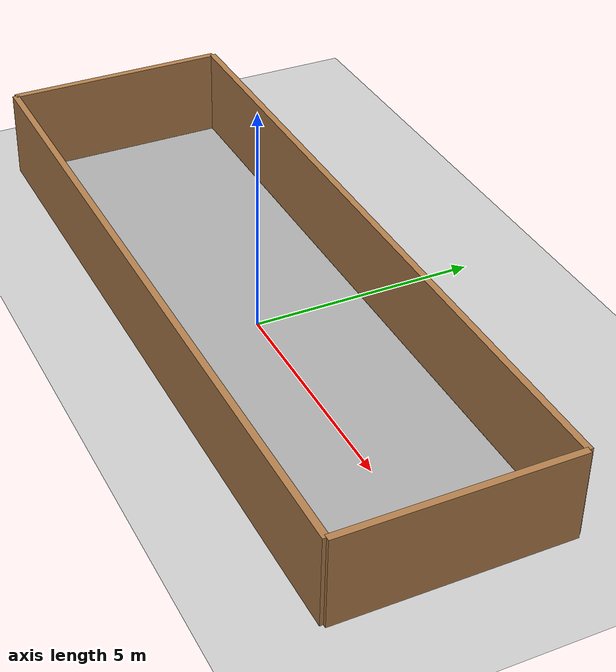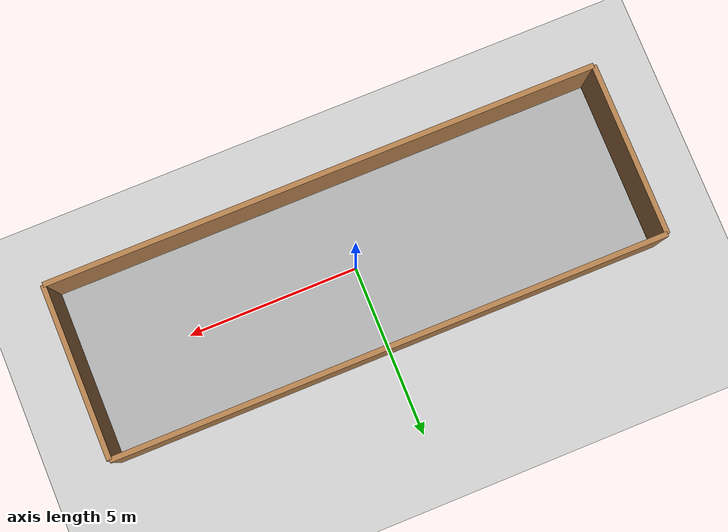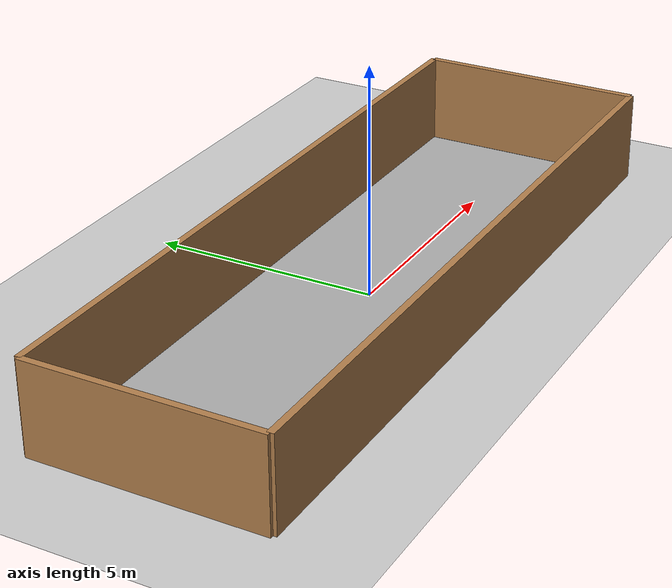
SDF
<?xml version='1.0'?>
<sdf version='1.6'>
  <world name='default'>

    <!-- Camera Pose -->
    <gui fullscreen='0'>
      <camera name='user_camera'>
        <pose>-15 0 15 0 0.785398 -0</pose>
      </camera>
    </gui>

    <!-- physics -->
    <physics type='ode'>
      <max_step_size>0.001</max_step_size>
      <real_time_update_rate>1000</real_time_update_rate>
    </physics>

    <!-- sun -->
    <include>
      <uri>model://sun</uri>
    </include>

    <!-- Ground Plane -->
    <include>
      <uri>model://ground_plane</uri>
    </include>

    <!-- simple_room -->
    <include>
      <name>simple_room</name>
      <uri>model://simple_room</uri>
      <pose>0 0 0 0 0 0</pose>
    </include>

    <plugin name="start" filename="libregions.so">
      <layer>1</layer>
      <color>Green</color>
      <region>-7.5 -2.0 -6.0 2</region>
    </plugin>

    <plugin name="goal" filename="libregions.so">
      <layer>2</layer>
      <color>Blue</color>
      <region>6.0 -2.0 7.5 2</region>
    </plugin>

  </world>
</sdf>

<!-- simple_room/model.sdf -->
<sdf version='1.6'>

  <model name='simple_room'>
    <pose>0 0 0 0 -0 0</pose>

    <link name="ground_plane">
      <collision name="ground_plane_collision">
        <geometry>
          <plane>
            <normal>0 0 1</normal>
            <size>16 5</size>
          </plane>
        </geometry>
        <surface>
          <contact>
             <collide_bitmask>0xffff</collide_bitmask>
          </contact>
          <friction>
            <ode>
              <mu>100</mu>
              <mu2>50</mu2>
            </ode>
          </friction>
        </surface>
      </collision>
      <visual name="ground_plane_visual">
        <cast_shadows>false</cast_shadows>
        <geometry>
          <plane>
            <normal>0 0 1</normal>
            <size>16 5</size>
          </plane>
        </geometry>
        <material>
          <script>
            <uri>file://media/materials/scripts/gazebo.material</uri>
            <name>Gazebo/GreyTransparent</name>
          </script>
        </material>
      </visual>
    </link>

    <link name='Wall_0'>
      <pose>0 -2.5 1 0 -0 0</pose>
      <collision name='Wall_0_Collision'>
        <geometry>
          <box>
            <size>16 0.15 2.0</size>
          </box>
        </geometry>
        <max_contacts>10</max_contacts>
        <surface>
          <contact>
            <ode/>
          </contact>
          <bounce/>
          <friction>
            <torsional>
              <ode/>
            </torsional>
            <ode/>
          </friction>
        </surface>
      </collision>
      <visual name='Wall_0_Visual'>
        <geometry>
          <box>
            <size>16 0.15 2.0</size>
          </box>
        </geometry>
        <material>
          <script>
            <uri>file://media/materials/scripts/gazebo.material</uri>
            <name>Gazebo/Wood</name>
          </script>
          <ambient>1 1 1 1</ambient>
        </material>
        <meta>
          <layer>0</layer>
        </meta>
      </visual>
      <self_collide>0</self_collide>
      <enable_wind>0</enable_wind>
      <kinematic>0</kinematic>
    </link>

    <link name='Wall_1'>
      <pose>8 -0 1 0 -0 1.5708</pose>
      <collision name='Wall_1_Collision'>
        <geometry>
          <box>
            <size>5 0.15 2.0</size>
          </box>
        </geometry>
        <max_contacts>10</max_contacts>
        <surface>
          <contact>
            <ode/>
          </contact>
          <bounce/>
          <friction>
            <torsional>
              <ode/>
            </torsional>
            <ode/>
          </friction>
        </surface>
      </collision>
      <visual name='Wall_1_Visual'>
        <geometry>
          <box>
            <size>5 0.15 2.0</size>
          </box>
        </geometry>
        <material>
          <script>
            <uri>file://media/materials/scripts/gazebo.material</uri>
            <name>Gazebo/Wood</name>
          </script>
          <ambient>1 1 1 1</ambient>
        </material>
        <meta>
          <layer>0</layer>
        </meta>
      </visual>
      <self_collide>0</self_collide>
      <enable_wind>0</enable_wind>
      <kinematic>0</kinematic>
    </link>

    <link name='Wall_2'>
      <pose>0 2.5 1 0 0 3.14159</pose>
      <collision name='Wall_2_Collision'>
        <geometry>
          <box>
            <size>16 0.15 2.0</size>
          </box>
        </geometry>
        <max_contacts>10</max_contacts>
        <surface>
          <contact>
            <ode/>
          </contact>
          <bounce/>
          <friction>
            <torsional>
              <ode/>
            </torsional>
            <ode/>
          </friction>
        </surface>
      </collision>
      <visual name='Wall_2_Visual'>
        <geometry>
          <box>
            <size>16 0.15 2.0</size>
          </box>
        </geometry>
        <material>
          <script>
            <uri>file://media/materials/scripts/gazebo.material</uri>
            <name>Gazebo/Wood</name>
          </script>
          <ambient>1 1 1 1</ambient>
        </material>
        <meta>
          <layer>0</layer>
        </meta>
      </visual>
      <self_collide>0</self_collide>
      <enable_wind>0</enable_wind>
      <kinematic>0</kinematic>
    </link>

    <link name='Wall_3'>
      <pose>-8 0 1 0 -0 -1.5708</pose>
      <collision name='Wall_3_Collision'>
        <geometry>
          <box>
            <size>5 0.15 2.0</size>
          </box>
        </geometry>
        <max_contacts>10</max_contacts>
        <surface>
          <contact>
            <ode/>
          </contact>
          <bounce/>
          <friction>
            <torsional>
              <ode/>
            </torsional>
            <ode/>
          </friction>
        </surface>
      </collision>
      <visual name='Wall_3_Visual'>
        <geometry>
          <box>
            <size>5 0.15 2.0</size>
          </box>
        </geometry>
        <material>
          <script>
            <uri>file://media/materials/scripts/gazebo.material</uri>
            <name>Gazebo/Wood</name>
          </script>
          <ambient>1 1 1 1</ambient>
        </material>
        <meta>
          <layer>0</layer>
        </meta>
      </visual>
      <self_collide>0</self_collide>
      <enable_wind>0</enable_wind>
      <kinematic>0</kinematic>
    </link>
    <static>1</static>
  </model>
</sdf>
